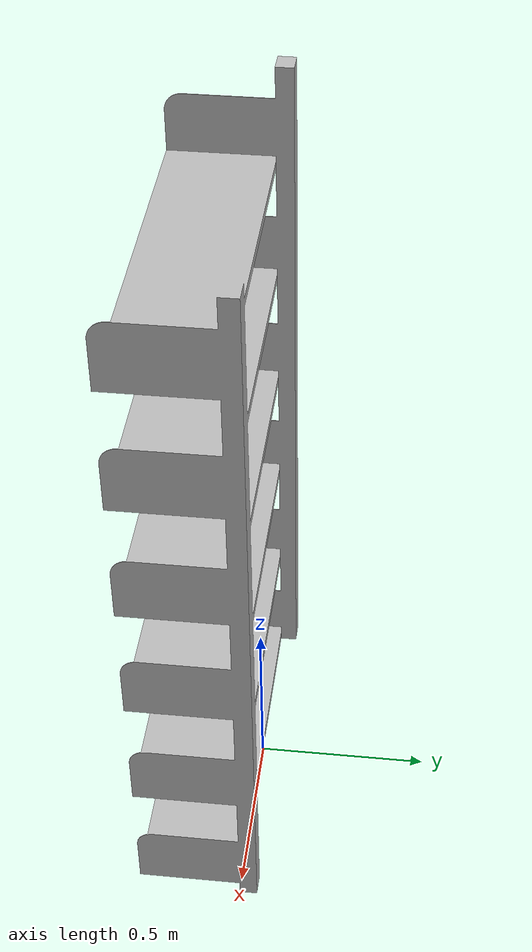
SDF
<?xml version="1.0" ?>

<sdf version="1.5">
  <model name="Shelves">
    <static>true</static>
    <link name="Shelves">
      <collision name="collision">
	<geometry>
            <mesh>
	      <uri>model://Shelves/Shelves.dae</uri>
	    </mesh>
          </geometry>
      </collision>
      <visual name="vis">
        <cast_shadows>false</cast_shadows>
	<geometry>
            <mesh>
	      <uri>model://Shelves/Shelves.dae</uri>
	    </mesh>
          </geometry>
      </visual>
    </link>
  </model>
</sdf>
